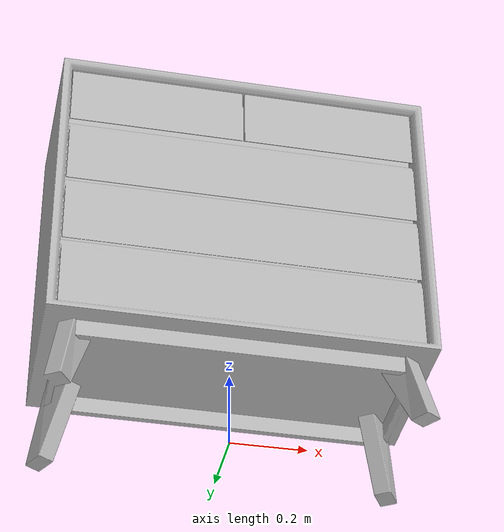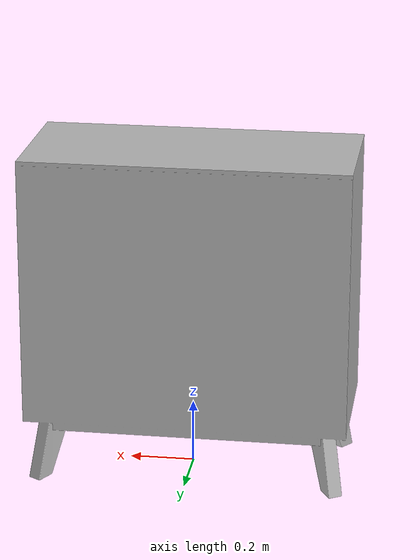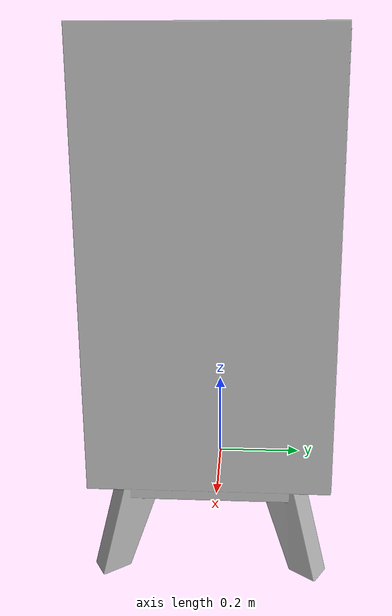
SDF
<sdf version="1.6">
	<model name="Dressers_Oaa5814ac11e9_lod0">
		<link name="main_link">
			<visual name="visual_RootNode">
				<geometry>
					<mesh>
						<uri>model://Dressers_Oaa5814ac11e9_lod0/meshes/visual_RootNode.dae</uri>
					</mesh>
				</geometry>
			</visual>
			<collision name="collision_RootNode_lod0_0">
				<geometry>
					<mesh>
						<uri>model://Dressers_Oaa5814ac11e9_lod0/meshes/collision_RootNode_lod0_0.dae</uri>
					</mesh>
				</geometry>
			</collision>
		</link>
	</model>
</sdf>
